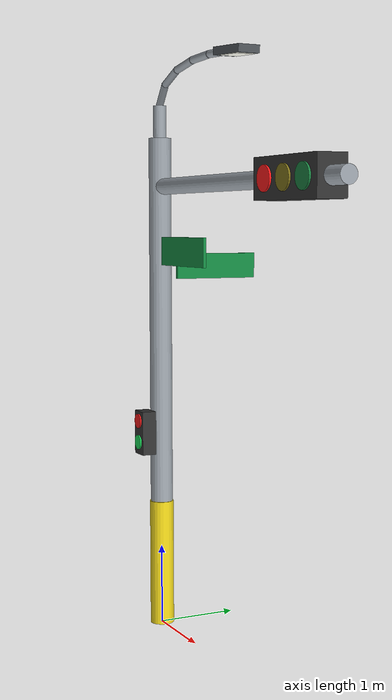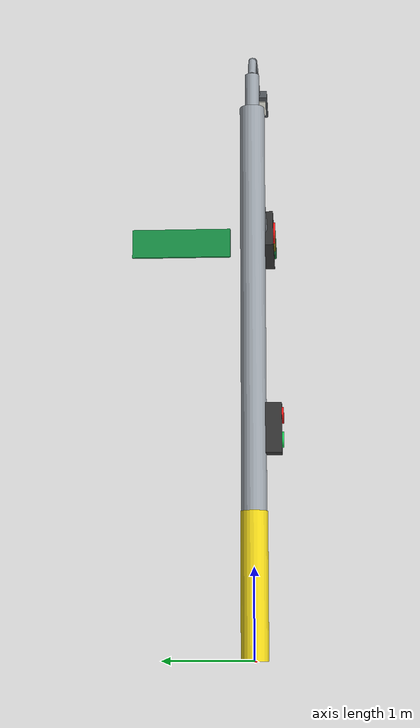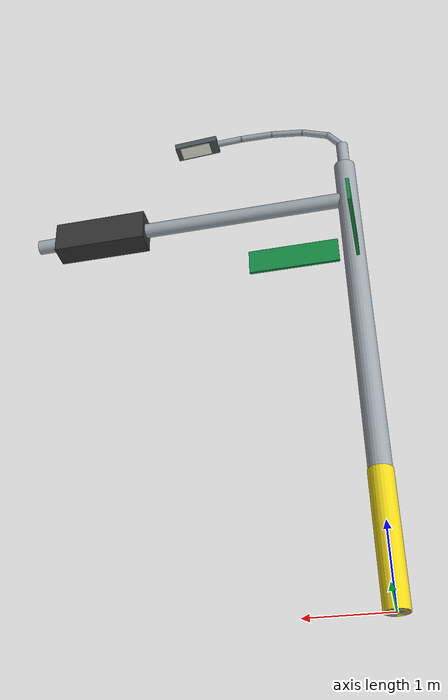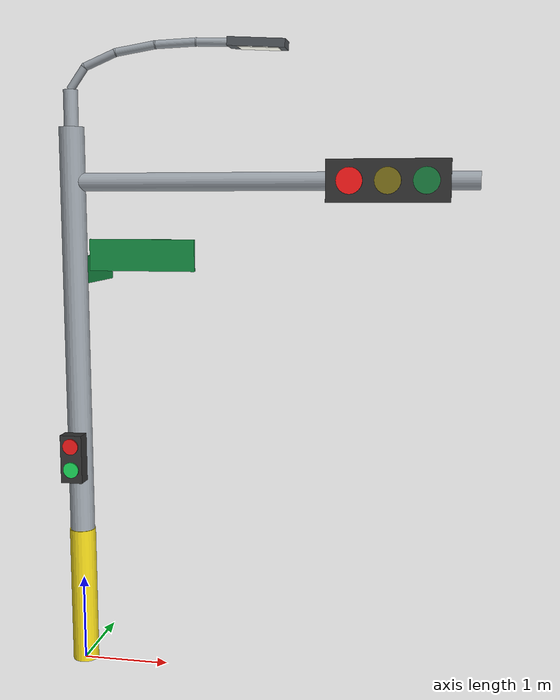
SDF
<?xml version="1.0" ?>
<sdf version="1.8">
  <model name="traffic_signal_pole">
    <static>true</static>
    <link name="pole_link">
      <!-- 物理碰撞剛體 (僅垂直立桿圓柱) -->
      <collision name="pole_base_col">
        <pose>0 0 3.1 0 0 0</pose>
        <geometry>
          <cylinder><radius>0.15</radius><length>6.2</length></cylinder>
        </geometry>
      </collision>

      <!-- 視覺呈現：鍍鋅金屬主立桿 (Galvanized Steel Vertical Pole) -->
      <visual name="vertical_pole_vis">
        <pose>0 0 3.1 0 0 0</pose>
        <geometry>
          <cylinder><radius>0.14</radius><length>6.2</length></cylinder>
        </geometry>
        <material>
          <ambient>0.55 0.58 0.60 1</ambient>
          <diffuse>0.62 0.65 0.68 1</diffuse>
        </material>
      </visual>

      <!-- 視覺呈現：立桿底部黃黑斑馬警戒紋 (Yellow/Black Hazard Striping) -->
      <visual name="hazard_base_vis">
        <pose>0 0 0.8 0 0 0</pose>
        <geometry>
          <cylinder><radius>0.15</radius><length>1.6</length></cylinder>
        </geometry>
        <material>
          <ambient>0.9 0.8 0.1 1</ambient>
          <diffuse>0.95 0.85 0.1 1</diffuse>
        </material>
      </visual>

      <!-- 視覺呈現：水平懸臂橫桿 (Cantilever Arm Extending 4.5m) -->
      <visual name="cantilever_arm_vis">
        <pose>2.2 0 5.6 0 1.5707963 0</pose>
        <geometry>
          <cylinder><radius>0.10</radius><length>4.5</length></cylinder>
        </geometry>
        <material>
          <ambient>0.55 0.58 0.60 1</ambient>
          <diffuse>0.62 0.65 0.68 1</diffuse>
        </material>
      </visual>

      <!-- 視覺呈現：車道三色號誌箱背板 (3-Aspect Traffic Signal Visor Box) -->
      <visual name="signal_housing_vis">
        <pose>3.5 0 5.6 0 0 0</pose>
        <geometry>
          <box><size>1.3 0.35 0.45</size></box>
        </geometry>
        <material>
          <ambient>0.15 0.15 0.15 1</ambient>
          <diffuse>0.2 0.2 0.2 1</diffuse>
        </material>
      </visual>

      <!-- 號誌三燈：紅燈 (Red Lens) -->
      <visual name="light_red">
        <pose>3.1 -0.18 5.6 1.5707963 0 0</pose>
        <geometry>
          <cylinder><radius>0.14</radius><length>0.04</length></cylinder>
        </geometry>
        <material>
          <ambient>0.9 0.05 0.05 1</ambient>
          <diffuse>1.0 0.1 0.1 1</diffuse>
          <emissive>0.9 0.1 0.1 1</emissive>
        </material>
      </visual>

      <!-- 號誌三燈：黃燈 (Yellow Lens) -->
      <visual name="light_yellow">
        <pose>3.5 -0.18 5.6 1.5707963 0 0</pose>
        <geometry>
          <cylinder><radius>0.14</radius><length>0.04</length></cylinder>
        </geometry>
        <material>
          <ambient>0.4 0.35 0.05 1</ambient>
          <diffuse>0.5 0.45 0.1 1</diffuse>
        </material>
      </visual>

      <!-- 號誌三燈：綠燈 (Green Lens) -->
      <visual name="light_green">
        <pose>3.9 -0.18 5.6 1.5707963 0 0</pose>
        <geometry>
          <cylinder><radius>0.14</radius><length>0.04</length></cylinder>
        </geometry>
        <material>
          <ambient>0.05 0.4 0.2 1</ambient>
          <diffuse>0.1 0.5 0.25 1</diffuse>
        </material>
      </visual>

      <!-- 視覺呈現：行人專用號誌燈 (小綠人/小紅人 Pedestrian Countdown Signal) -->
      <visual name="ped_signal_vis">
        <pose>0 -0.22 2.5 0 0 0</pose>
        <geometry>
          <box><size>0.25 0.18 0.55</size></box>
        </geometry>
        <material>
          <ambient>0.15 0.15 0.15 1</ambient>
          <diffuse>0.2 0.2 0.2 1</diffuse>
        </material>
      </visual>
      <visual name="ped_light_top">
        <pose>0 -0.32 2.65 1.5707963 0 0</pose>
        <geometry>
          <cylinder><radius>0.09</radius><length>0.02</length></cylinder>
        </geometry>
        <material>
          <ambient>0.85 0.1 0.1 1</ambient>
          <diffuse>0.95 0.1 0.1 1</diffuse>
          <emissive>0.8 0.1 0.1 1</emissive>
        </material>
      </visual>
      <visual name="ped_light_bot">
        <pose>0 -0.32 2.38 1.5707963 0 0</pose>
        <geometry>
          <cylinder><radius>0.09</radius><length>0.02</length></cylinder>
        </geometry>
        <material>
          <ambient>0.05 0.75 0.3 1</ambient>
          <diffuse>0.1 0.85 0.35 1</diffuse>
          <emissive>0.1 0.7 0.3 1</emissive>
        </material>
      </visual>

      <!-- 視覺呈現：台灣綠底白字路名牌 (Street Name Signs) -->
      <!-- 關新路路名牌 -->
      <visual name="street_name_gx">
        <pose>0.8 -0.05 4.8 0 0 0</pose>
        <geometry>
          <box><size>1.2 0.04 0.35</size></box>
        </geometry>
        <material>
          <ambient>0.05 0.45 0.22 1</ambient>
          <diffuse>0.08 0.55 0.26 1</diffuse>
          <emissive>0.05 0.25 0.12 1</emissive>
        </material>
      </visual>
      <!-- 關新二街路名牌 (側面垂直) -->
      <visual name="street_name_gx2nd">
        <pose>-0.05 0.8 4.6 0 0 1.5707963</pose>
        <geometry>
          <box><size>1.1 0.04 0.32</size></box>
        </geometry>
        <material>
          <ambient>0.05 0.45 0.22 1</ambient>
          <diffuse>0.08 0.55 0.26 1</diffuse>
          <emissive>0.05 0.25 0.12 1</emissive>
        </material>
      </visual>

      <!-- 視覺呈現：頂部路燈延伸管 (Pole Extension Mast) -->
      <visual name="street_light_mast_ext">
        <pose>0 0 6.4 0 0 0</pose>
        <geometry>
          <cylinder><radius>0.08</radius><length>0.40</length></cylinder>
        </geometry>
        <material>
          <ambient>0.55 0.58 0.60 1</ambient>
          <diffuse>0.62 0.65 0.68 1</diffuse>
        </material>
      </visual>

      <!-- 附掛路燈懸臂弧形段 1 -->
      <visual name="street_light_arm_seg_1">
        <pose>0.0885 0 6.7194 0 0.63767 0</pose>
        <geometry><cylinder><radius>0.045</radius><length>0.2973</length></cylinder></geometry>
        <material><ambient>0.55 0.58 0.60 1</ambient><diffuse>0.62 0.65 0.68 1</diffuse></material>
      </visual>
      <visual name="street_light_joint_1">
        <pose>0.1770 0 6.8389 0 0 0</pose>
        <geometry><sphere><radius>0.046</radius></sphere></geometry>
        <material><ambient>0.55 0.58 0.60 1</ambient><diffuse>0.62 0.65 0.68 1</diffuse></material>
      </visual>

      <!-- 附掛路燈懸臂弧形段 2 -->
      <visual name="street_light_arm_seg_2">
        <pose>0.3547 0 6.9103 0 1.18878 0</pose>
        <geometry><cylinder><radius>0.045</radius><length>0.3830</length></cylinder></geometry>
        <material><ambient>0.55 0.58 0.60 1</ambient><diffuse>0.62 0.65 0.68 1</diffuse></material>
      </visual>
      <visual name="street_light_joint_2">
        <pose>0.5324 0 6.9817 0 0 0</pose>
        <geometry><sphere><radius>0.046</radius></sphere></geometry>
        <material><ambient>0.55 0.58 0.60 1</ambient><diffuse>0.62 0.65 0.68 1</diffuse></material>
      </visual>

      <!-- 附掛路燈懸臂弧形段 3 -->
      <visual name="street_light_arm_seg_3">
        <pose>0.7559 0 7.0159 0 1.41906 0</pose>
        <geometry><cylinder><radius>0.045</radius><length>0.4521</length></cylinder></geometry>
        <material><ambient>0.55 0.58 0.60 1</ambient><diffuse>0.62 0.65 0.68 1</diffuse></material>
      </visual>
      <visual name="street_light_joint_3">
        <pose>0.9793 0 7.0500 0 0 0</pose>
        <geometry><sphere><radius>0.046</radius></sphere></geometry>
        <material><ambient>0.55 0.58 0.60 1</ambient><diffuse>0.62 0.65 0.68 1</diffuse></material>
      </visual>

      <!-- 附掛路燈懸臂弧形段 4 -->
      <visual name="street_light_arm_seg_4">
        <pose>1.2051 0 7.0578 0 1.53637 0</pose>
        <geometry><cylinder><radius>0.045</radius><length>0.4518</length></cylinder></geometry>
        <material><ambient>0.55 0.58 0.60 1</ambient><diffuse>0.62 0.65 0.68 1</diffuse></material>
      </visual>
      <visual name="street_light_joint_4">
        <pose>1.4308 0 7.0656 0 0 0</pose>
        <geometry><sphere><radius>0.046</radius></sphere></geometry>
        <material><ambient>0.55 0.58 0.60 1</ambient><diffuse>0.62 0.65 0.68 1</diffuse></material>
      </visual>

      <!-- 附掛路燈懸臂弧形段 5 (末端段) -->
      <visual name="street_light_arm_seg_5">
        <pose>1.6154 0 7.0578 0 1.61297 0</pose>
        <geometry><cylinder><radius>0.045</radius><length>0.3695</length></cylinder></geometry>
        <material><ambient>0.55 0.58 0.60 1</ambient><diffuse>0.62 0.65 0.68 1</diffuse></material>
      </visual>

      <!-- 視覺呈現：路燈燈具本體 (Overhead Streetlight Luminaire Housing) -->
      <visual name="street_light_head">
        <pose>2.10 0 7.03 0 0.06 0</pose>
        <geometry>
          <box><size>0.62 0.26 0.09</size></box>
        </geometry>
        <material>
          <ambient>0.24 0.25 0.27 1</ambient>
          <diffuse>0.32 0.34 0.36 1</diffuse>
        </material>
      </visual>

      <!-- 視覺呈現：路燈 LED 自發光板 (Emissive LED Panel) -->
      <visual name="street_light_led">
        <pose>2.12 0 6.98 0 0.06 0</pose>
        <geometry>
          <box><size>0.44 0.22 0.006</size></box>
        </geometry>
        <material>
          <ambient>1.0 1.0 0.95 1</ambient>
          <diffuse>1.0 1.0 0.95 1</diffuse>
          <emissive>0.95 0.95 0.90 1</emissive>
        </material>
      </visual>
    </link>
  </model>
</sdf>
